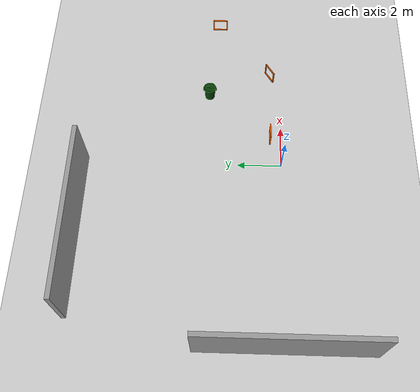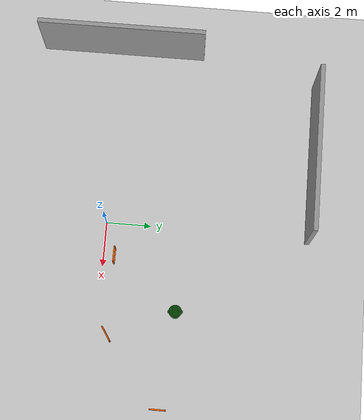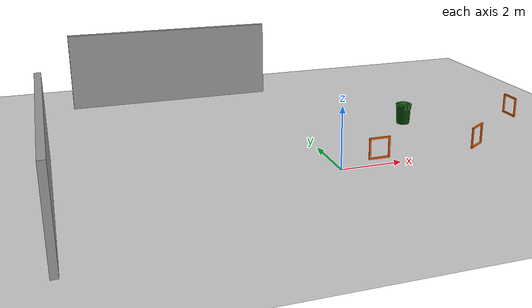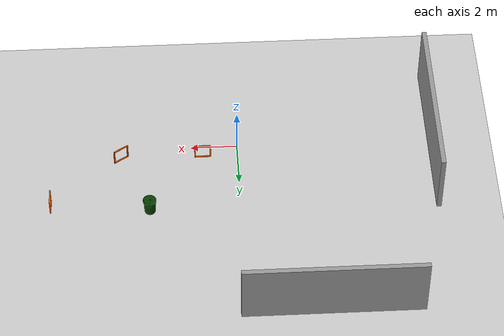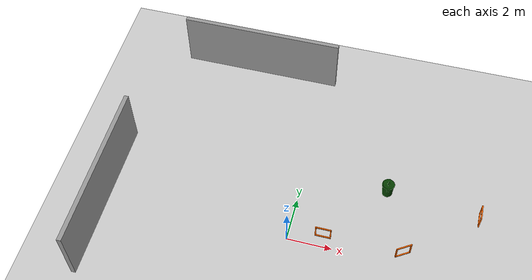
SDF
<sdf version="1.5">
 <world name="default">
  <include><uri>model://sun</uri></include>
  <include><uri>model://ground_plane</uri></include>
  <include><uri>model://asphalt_plane</uri></include>
  <physics name="default_physics" default="0" type="ode">
   <gravity>0 0 -9.8066</gravity>
   <ode>
    <solver>
     <type>quick</type>
     <iters>10</iters>
     <sor>1.3</sor>
     <use_dynamic_moi_rescaling>0</use_dynamic_moi_rescaling>
    </solver>
    <constraints>
     <cfm>0</cfm>
     <erp>0.2</erp>
     <contact_max_correcting_vel>100</contact_max_correcting_vel>
     <contact_surface_layer>0.001</contact_surface_layer>
    </constraints>
   </ode>
   <max_step_size>0.004</max_step_size>
   <real_time_factor>1</real_time_factor>
   <real_time_update_rate>250</real_time_update_rate>
   <magnetic_field>6.0e-6 2.3e-5 -4.2e-5</magnetic_field>
  </physics>
  <include>
   <name>first_2015_trash_can</name>
   <uri>model://first_2015_trash_can</uri>
   <pose>3.8239 3.403029 0 0 0 0</pose>
  </include>
  <include><name>grey_wall</name><uri>model://grey_wall</uri><pose>-8.34545 0 0 0 0 -1.57</pose></include>
  <include><name>grey_wall2</name><uri>model://grey_wall</uri><pose>-3.5 9 0 0 0 0</pose></include>
  <include><name>drone_gate</name><uri>model://drone_gate</uri><pose>8 3 0 0 0 0</pose></include>
  <include><name>drone_gate2</name><uri>model://drone_gate</uri><pose>5 0.5 0 0 0 -1</pose></include>
  <include><name>drone_gate3</name><uri>model://drone_gate</uri><pose>1.5 0.5 0 0 0 -1.57</pose></include>
 </world>
</sdf>

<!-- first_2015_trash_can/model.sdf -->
<sdf version="1.5">
  <model name="first_2015_trash_can">
    <link name="link">
      <inertial>
        <pose>0 0 0.3683 0 0 0</pose>
        <mass>4.83076</mass>
        <inertia>
          <ixx>0.281534052</ixx>
          <ixy>0</ixy>
          <ixz>0</ixz>
          <iyy>0.281534052</iyy>
          <iyz>0</iyz>
          <izz>0.126222831</izz>
        </inertia>
      </inertial>

      <visual name="visual">
        <geometry>
          <mesh>
            <uri>model://first_2015_trash_can/meshes/trash_can.dae</uri>
          </mesh>
        </geometry>
      </visual>

      <collision name="collision">
        <geometry>
          <mesh>
            <uri>model://first_2015_trash_can/meshes/trash_can.dae</uri>
          </mesh>
        </geometry>
      </collision>
    </link>
  </model>
</sdf>

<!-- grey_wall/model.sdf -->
<sdf version="1.5">
  <model name="grey_wall">
    <static>true</static>
    <link name="link">
      <pose>0 0 1.4 0 0 0</pose>
      <collision name="collision">
        <geometry>
          <box>
            <size>7.5 0.2 2.8</size>
          </box>
        </geometry>
      </collision>
      <visual name="visual">
        <cast_shadows>false</cast_shadows>
        <geometry>
          <box>
            <size>7.5 0.2 2.8</size>
          </box>
        </geometry>
        <material>
          <script>
            <uri>model://grey_wall/materials/scripts</uri>
            <uri>model://grey_wall/materials/textures</uri>
            <name>vrc/grey_wall</name>
          </script>
        </material>
      </visual>
    </link>
  </model>
</sdf>

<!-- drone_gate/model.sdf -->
<sdf version="1.9">
  <model name="drone_gate">
    <static>true</static>
    <link name="gate_frame">

      <!-- Left Post -->
      <collision name="left_post_collision">
        <pose>0 0.33 0.355 0 0 0</pose>
        <geometry><box><size>0.05 0.05 0.71</size></box></geometry>
      </collision>
      <visual name="left_post_visual">
        <pose>0 0.33 0.355 0 0 0</pose>
        <geometry><box><size>0.05 0.05 0.71</size></box></geometry>
        <material>
          <ambient>1.0 0.4 0.0 1</ambient>
          <diffuse>1.0 0.4 0.0 1</diffuse>
          <specular>0.2 0.2 0.2 1</specular>
          <emissive>0.8 0.3 0.0 1</emissive>
        </material>
      </visual>

      <!-- Right Post -->
      <collision name="right_post_collision">
        <pose>0 -0.33 0.355 0 0 0</pose>
        <geometry><box><size>0.05 0.05 0.71</size></box></geometry>
      </collision>
      <visual name="right_post_visual">
        <pose>0 -0.33 0.355 0 0 0</pose>
        <geometry><box><size>0.05 0.05 0.71</size></box></geometry>
        <material>
          <ambient>1.0 0.4 0.0 1</ambient>
          <diffuse>1.0 0.4 0.0 1</diffuse>
          <specular>0.2 0.2 0.2 1</specular>
          <emissive>0.8 0.3 0.0 1</emissive>
        </material>
      </visual>

      <!-- Top Bar -->
      <collision name="top_bar_collision">
        <pose>0 0 0.685 0 0 0</pose>
        <geometry><box><size>0.05 0.71 0.05</size></box></geometry>
      </collision>
      <visual name="top_bar_visual">
        <pose>0 0 0.685 0 0 0</pose>
        <geometry><box><size>0.05 0.71 0.05</size></box></geometry>
        <material>
          <ambient>1.0 0.4 0.0 1</ambient>
          <diffuse>1.0 0.4 0.0 1</diffuse>
          <specular>0.2 0.2 0.2 1</specular>
          <emissive>0.8 0.3 0.0 1</emissive>
        </material>
      </visual>

      <!-- Bottom Bar -->
      <collision name="bottom_bar_collision">
        <pose>0 0 0.025 0 0 0</pose>
        <geometry><box><size>0.05 0.71 0.05</size></box></geometry>
      </collision>
      <visual name="bottom_bar_visual">
        <pose>0 0 0.025 0 0 0</pose>
        <geometry><box><size>0.05 0.71 0.05</size></box></geometry>
        <material>
          <ambient>1.0 0.4 0.0 1</ambient>
          <diffuse>1.0 0.4 0.0 1</diffuse>
          <specular>0.2 0.2 0.2 1</specular>
          <emissive>0.8 0.3 0.0 1</emissive>
        </material>
      </visual>

    </link>
  </model>
</sdf>
